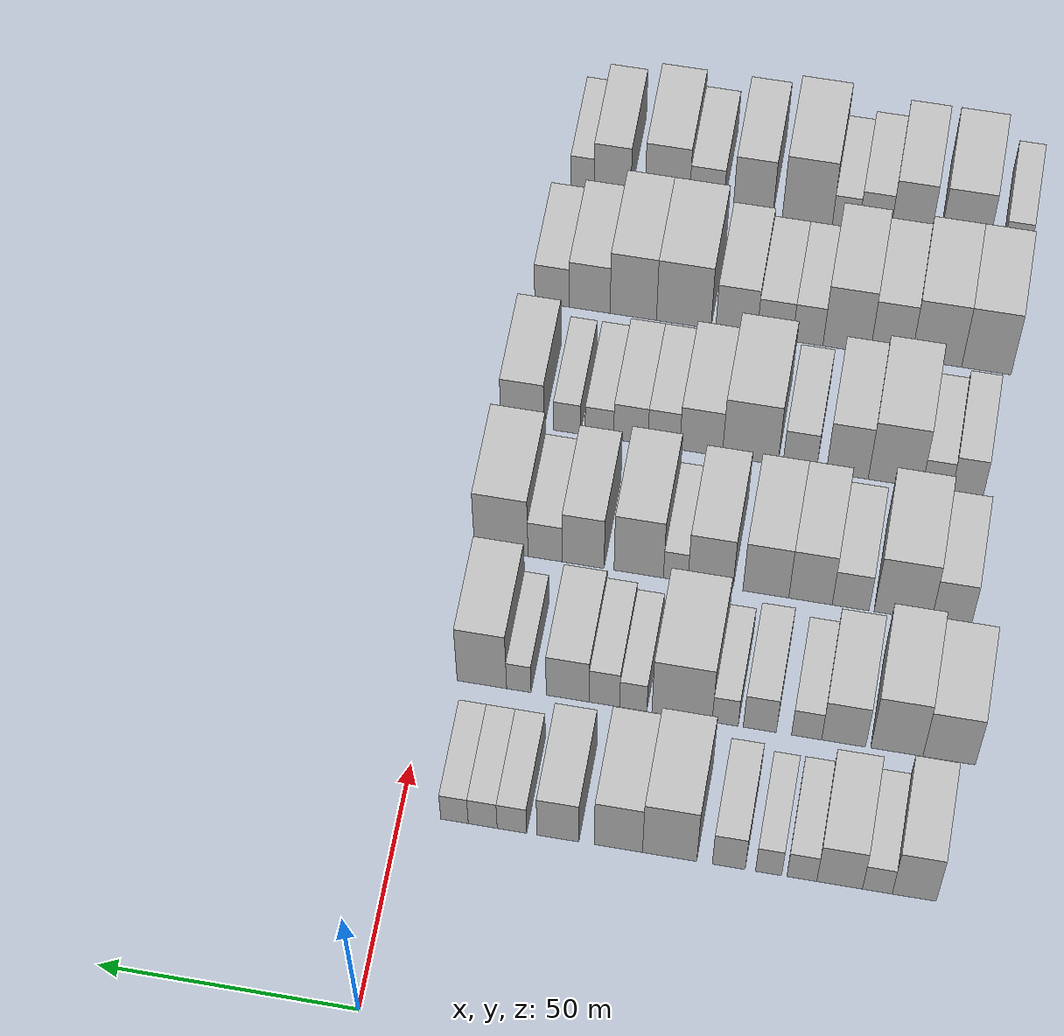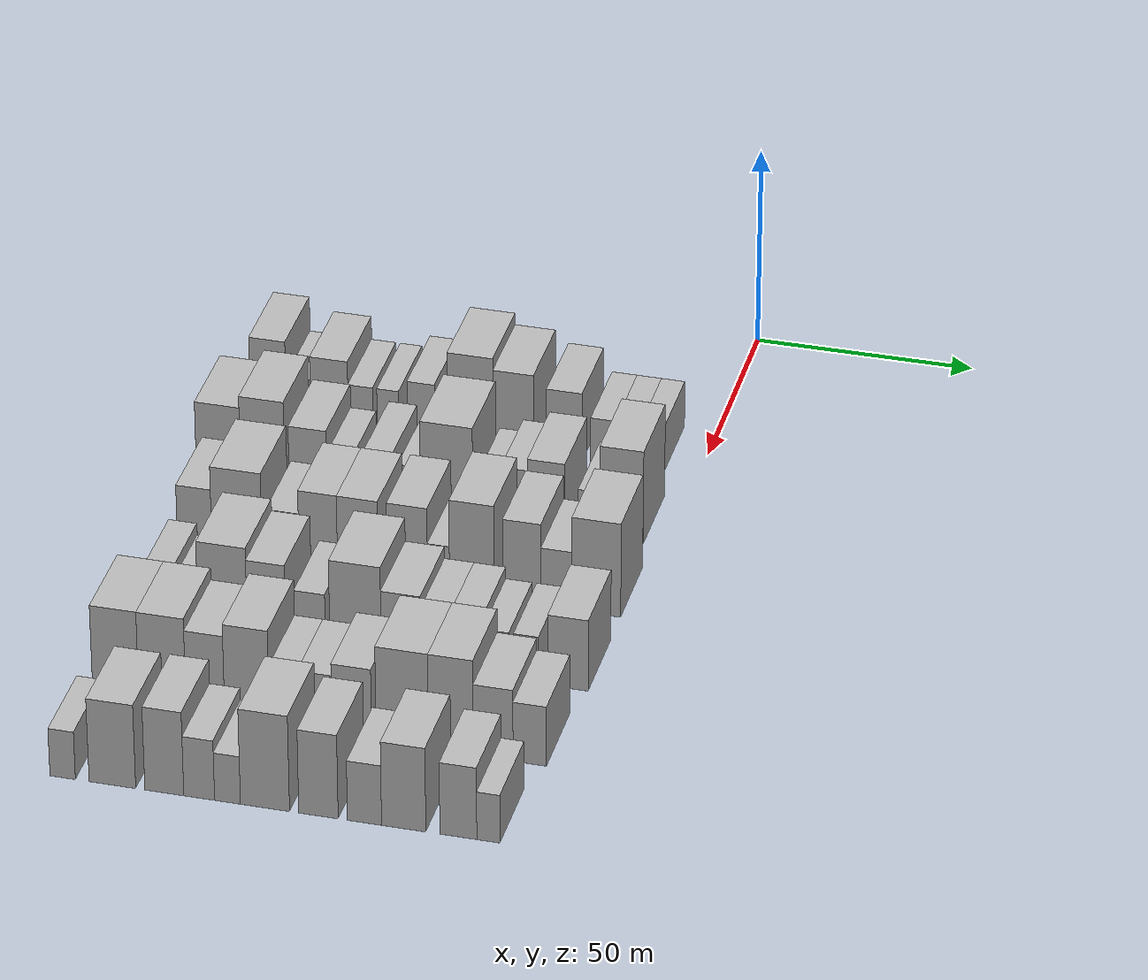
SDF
<sdf version="1.6">
 <world name="default">
  <model name="building_45">
   <static>1</static>
   <pose>50.0000 -99.3476 0 0.000000 0.000000 0.000000</pose>
   <link name="link">
    <pose>0 0 10.50 0 0 0</pose>
    <collision name="collision"><geometry><box><size>20.0000 8.4114 21.0000</size></box></geometry></collision>
    <visual name="visual">
     <cast_shadows>0</cast_shadows>
     <geometry><box><size>20.0000 8.4114 21.0000</size></box></geometry>
     <material>
      <script>
       <uri>model://HANNAS_wall/materials/scripts</uri>
       <uri>model://HANNAS_wall/materials/textures</uri>
       <name>vrc/HANNAS_wall</name>
      </script>
     </material>
    </visual>
   </link>
  </model>
  <model name="building_46">
   <static>1</static>
   <pose>50.0000 -92.2943 0 0.000000 0.000000 0.000000</pose>
   <link name="link">
    <pose>0 0 6.00 0 0 0</pose>
    <collision name="collision"><geometry><box><size>20.0000 5.6951 12.0000</size></box></geometry></collision>
    <visual name="visual">
     <cast_shadows>0</cast_shadows>
     <geometry><box><size>20.0000 5.6951 12.0000</size></box></geometry>
     <material>
      <script>
       <uri>model://HANNAS_wall/materials/scripts</uri>
       <uri>model://HANNAS_wall/materials/textures</uri>
       <name>vrc/HANNAS_wall</name>
      </script>
     </material>
    </visual>
   </link>
  </model>
  <model name="building_47">
   <static>1</static>
   <pose>50.0000 -85.0545 0 0.000000 0.000000 0.000000</pose>
   <link name="link">
    <pose>0 0 9.00 0 0 0</pose>
    <collision name="collision"><geometry><box><size>20.0000 8.7846 18.0000</size></box></geometry></collision>
    <visual name="visual">
     <cast_shadows>0</cast_shadows>
     <geometry><box><size>20.0000 8.7846 18.0000</size></box></geometry>
     <material>
      <script>
       <uri>model://HANNAS_wall/materials/scripts</uri>
       <uri>model://HANNAS_wall/materials/textures</uri>
       <name>vrc/HANNAS_wall</name>
      </script>
     </material>
    </visual>
   </link>
  </model>
  <model name="building_48">
   <static>1</static>
   <pose>50.0000 -77.7949 0 0.000000 0.000000 0.000000</pose>
   <link name="link">
    <pose>0 0 6.00 0 0 0</pose>
    <collision name="collision"><geometry><box><size>20.0000 5.7346 12.0000</size></box></geometry></collision>
    <visual name="visual">
     <cast_shadows>0</cast_shadows>
     <geometry><box><size>20.0000 5.7346 12.0000</size></box></geometry>
     <material>
      <script>
       <uri>model://HANNAS_wall/materials/scripts</uri>
       <uri>model://HANNAS_wall/materials/textures</uri>
       <name>vrc/HANNAS_wall</name>
      </script>
     </material>
    </visual>
   </link>
  </model>
  <model name="building_49">
   <static>1</static>
   <pose>50.0000 -71.4080 0 0.000000 0.000000 0.000000</pose>
   <link name="link">
    <pose>0 0 6.00 0 0 0</pose>
    <collision name="collision"><geometry><box><size>20.0000 5.0391 12.0000</size></box></geometry></collision>
    <visual name="visual">
     <cast_shadows>0</cast_shadows>
     <geometry><box><size>20.0000 5.0391 12.0000</size></box></geometry>
     <material>
      <script>
       <uri>model://HANNAS_wall/materials/scripts</uri>
       <uri>model://HANNAS_wall/materials/textures</uri>
       <name>vrc/HANNAS_wall</name>
      </script>
     </material>
    </visual>
   </link>
  </model>
  <model name="building_50">
   <static>1</static>
   <pose>50.0000 -63.7196 0 0.000000 0.000000 0.000000</pose>
   <link name="link">
    <pose>0 0 7.50 0 0 0</pose>
    <collision name="collision"><geometry><box><size>20.0000 6.3378 15.0000</size></box></geometry></collision>
    <visual name="visual">
     <cast_shadows>0</cast_shadows>
     <geometry><box><size>20.0000 6.3378 15.0000</size></box></geometry>
     <material>
      <script>
       <uri>model://HANNAS_wall/materials/scripts</uri>
       <uri>model://HANNAS_wall/materials/textures</uri>
       <name>vrc/HANNAS_wall</name>
      </script>
     </material>
    </visual>
   </link>
  </model>
  <model name="building_51">
   <static>1</static>
   <pose>50.0000 -52.3012 0 0.000000 0.000000 0.000000</pose>
   <link name="link">
    <pose>0 0 12.00 0 0 0</pose>
    <collision name="collision"><geometry><box><size>20.0000 10.4989 24.0000</size></box></geometry></collision>
    <visual name="visual">
     <cast_shadows>0</cast_shadows>
     <geometry><box><size>20.0000 10.4989 24.0000</size></box></geometry>
     <material>
      <script>
       <uri>model://HANNAS_wall/materials/scripts</uri>
       <uri>model://HANNAS_wall/materials/textures</uri>
       <name>vrc/HANNAS_wall</name>
      </script>
     </material>
    </visual>
   </link>
  </model>
  <model name="building_52">
   <static>1</static>
   <pose>50.0000 -42.3873 0 0.000000 0.000000 0.000000</pose>
   <link name="link">
    <pose>0 0 10.50 0 0 0</pose>
    <collision name="collision"><geometry><box><size>20.0000 9.3289 21.0000</size></box></geometry></collision>
    <visual name="visual">
     <cast_shadows>0</cast_shadows>
     <geometry><box><size>20.0000 9.3289 21.0000</size></box></geometry>
     <material>
      <script>
       <uri>model://HANNAS_wall/materials/scripts</uri>
       <uri>model://HANNAS_wall/materials/textures</uri>
       <name>vrc/HANNAS_wall</name>
      </script>
     </material>
    </visual>
   </link>
  </model>
  <model name="building_53">
   <static>1</static>
   <pose>50.0000 -30.6553 0 0.000000 0.000000 0.000000</pose>
   <link name="link">
    <pose>0 0 9.00 0 0 0</pose>
    <collision name="collision"><geometry><box><size>20.0000 8.1350 18.0000</size></box></geometry></collision>
    <visual name="visual">
     <cast_shadows>0</cast_shadows>
     <geometry><box><size>20.0000 8.1350 18.0000</size></box></geometry>
     <material>
      <script>
       <uri>model://HANNAS_wall/materials/scripts</uri>
       <uri>model://HANNAS_wall/materials/textures</uri>
       <name>vrc/HANNAS_wall</name>
      </script>
     </material>
    </visual>
   </link>
  </model>
  <model name="building_54">
   <static>1</static>
   <pose>50.0000 -21.7076 0 0.000000 0.000000 0.000000</pose>
   <link name="link">
    <pose>0 0 6.00 0 0 0</pose>
    <collision name="collision"><geometry><box><size>20.0000 5.7605 12.0000</size></box></geometry></collision>
    <visual name="visual">
     <cast_shadows>0</cast_shadows>
     <geometry><box><size>20.0000 5.7605 12.0000</size></box></geometry>
     <material>
      <script>
       <uri>model://HANNAS_wall/materials/scripts</uri>
       <uri>model://HANNAS_wall/materials/textures</uri>
       <name>vrc/HANNAS_wall</name>
      </script>
     </material>
    </visual>
   </link>
  </model>
  <model name="building_55">
   <static>1</static>
   <pose>50.0000 -16.0079 0 0.000000 0.000000 0.000000</pose>
   <link name="link">
    <pose>0 0 6.00 0 0 0</pose>
    <collision name="collision"><geometry><box><size>20.0000 5.6389 12.0000</size></box></geometry></collision>
    <visual name="visual">
     <cast_shadows>0</cast_shadows>
     <geometry><box><size>20.0000 5.6389 12.0000</size></box></geometry>
     <material>
      <script>
       <uri>model://HANNAS_wall/materials/scripts</uri>
       <uri>model://HANNAS_wall/materials/textures</uri>
       <name>vrc/HANNAS_wall</name>
      </script>
     </material>
    </visual>
   </link>
  </model>
  <model name="building_56">
   <static>1</static>
   <pose>50.0000 -10.5080 0 0.000000 0.000000 0.000000</pose>
   <link name="link">
    <pose>0 0 6.00 0 0 0</pose>
    <collision name="collision"><geometry><box><size>20.0000 5.3609 12.0000</size></box></geometry></collision>
    <visual name="visual">
     <cast_shadows>0</cast_shadows>
     <geometry><box><size>20.0000 5.3609 12.0000</size></box></geometry>
     <material>
      <script>
       <uri>model://HANNAS_wall/materials/scripts</uri>
       <uri>model://HANNAS_wall/materials/textures</uri>
       <name>vrc/HANNAS_wall</name>
      </script>
     </material>
    </visual>
   </link>
  </model>
  <model name="building_160">
   <static>1</static>
   <pose>79.0000 -102.3951 0 0.000000 0.000000 0.000000</pose>
   <link name="link">
    <pose>0 0 10.50 0 0 0</pose>
    <collision name="collision"><geometry><box><size>20.0000 10.2375 21.0000</size></box></geometry></collision>
    <visual name="visual">
     <cast_shadows>0</cast_shadows>
     <geometry><box><size>20.0000 10.2375 21.0000</size></box></geometry>
     <material>
      <script>
       <uri>model://HANNAS_wall/materials/scripts</uri>
       <uri>model://HANNAS_wall/materials/textures</uri>
       <name>vrc/HANNAS_wall</name>
      </script>
     </material>
    </visual>
   </link>
  </model>
  <model name="building_161">
   <static>1</static>
   <pose>79.0000 -92.1810 0 0.000000 0.000000 0.000000</pose>
   <link name="link">
    <pose>0 0 12.00 0 0 0</pose>
    <collision name="collision"><geometry><box><size>20.0000 10.1906 24.0000</size></box></geometry></collision>
    <visual name="visual">
     <cast_shadows>0</cast_shadows>
     <geometry><box><size>20.0000 10.1906 24.0000</size></box></geometry>
     <material>
      <script>
       <uri>model://HANNAS_wall/materials/scripts</uri>
       <uri>model://HANNAS_wall/materials/textures</uri>
       <name>vrc/HANNAS_wall</name>
      </script>
     </material>
    </visual>
   </link>
  </model>
  <model name="building_162">
   <static>1</static>
   <pose>79.0000 -81.7719 0 0.000000 0.000000 0.000000</pose>
   <link name="link">
    <pose>0 0 9.00 0 0 0</pose>
    <collision name="collision"><geometry><box><size>20.0000 8.6277 18.0000</size></box></geometry></collision>
    <visual name="visual">
     <cast_shadows>0</cast_shadows>
     <geometry><box><size>20.0000 8.6277 18.0000</size></box></geometry>
     <material>
      <script>
       <uri>model://HANNAS_wall/materials/scripts</uri>
       <uri>model://HANNAS_wall/materials/textures</uri>
       <name>vrc/HANNAS_wall</name>
      </script>
     </material>
    </visual>
   </link>
  </model>
  <model name="building_163">
   <static>1</static>
   <pose>79.0000 -74.5168 0 0.000000 0.000000 0.000000</pose>
   <link name="link">
    <pose>0 0 6.00 0 0 0</pose>
    <collision name="collision"><geometry><box><size>20.0000 5.8824 12.0000</size></box></geometry></collision>
    <visual name="visual">
     <cast_shadows>0</cast_shadows>
     <geometry><box><size>20.0000 5.8824 12.0000</size></box></geometry>
     <material>
      <script>
       <uri>model://HANNAS_wall/materials/scripts</uri>
       <uri>model://HANNAS_wall/materials/textures</uri>
       <name>vrc/HANNAS_wall</name>
      </script>
     </material>
    </visual>
   </link>
  </model>
  <model name="building_164">
   <static>1</static>
   <pose>79.0000 -65.3250 0 0.000000 0.000000 0.000000</pose>
   <link name="link">
    <pose>0 0 7.50 0 0 0</pose>
    <collision name="collision"><geometry><box><size>20.0000 6.5013 15.0000</size></box></geometry></collision>
    <visual name="visual">
     <cast_shadows>0</cast_shadows>
     <geometry><box><size>20.0000 6.5013 15.0000</size></box></geometry>
     <material>
      <script>
       <uri>model://HANNAS_wall/materials/scripts</uri>
       <uri>model://HANNAS_wall/materials/textures</uri>
       <name>vrc/HANNAS_wall</name>
      </script>
     </material>
    </visual>
   </link>
  </model>
  <model name="building_165">
   <static>1</static>
   <pose>79.0000 -58.5099 0 0.000000 0.000000 0.000000</pose>
   <link name="link">
    <pose>0 0 6.00 0 0 0</pose>
    <collision name="collision"><geometry><box><size>20.0000 5.1288 12.0000</size></box></geometry></collision>
    <visual name="visual">
     <cast_shadows>0</cast_shadows>
     <geometry><box><size>20.0000 5.1288 12.0000</size></box></geometry>
     <material>
      <script>
       <uri>model://HANNAS_wall/materials/scripts</uri>
       <uri>model://HANNAS_wall/materials/textures</uri>
       <name>vrc/HANNAS_wall</name>
      </script>
     </material>
    </visual>
   </link>
  </model>
  <model name="building_166">
   <static>1</static>
   <pose>79.0000 -50.0015 0 0.000000 0.000000 0.000000</pose>
   <link name="link">
    <pose>0 0 12.00 0 0 0</pose>
    <collision name="collision"><geometry><box><size>20.0000 11.8882 24.0000</size></box></geometry></collision>
    <visual name="visual">
     <cast_shadows>0</cast_shadows>
     <geometry><box><size>20.0000 11.8882 24.0000</size></box></geometry>
     <material>
      <script>
       <uri>model://HANNAS_wall/materials/scripts</uri>
       <uri>model://HANNAS_wall/materials/textures</uri>
       <name>vrc/HANNAS_wall</name>
      </script>
     </material>
    </visual>
   </link>
  </model>
  <model name="building_167">
   <static>1</static>
   <pose>79.0000 -40.3662 0 0.000000 0.000000 0.000000</pose>
   <link name="link">
    <pose>0 0 6.00 0 0 0</pose>
    <collision name="collision"><geometry><box><size>20.0000 5.3823 12.0000</size></box></geometry></collision>
    <visual name="visual">
     <cast_shadows>0</cast_shadows>
     <geometry><box><size>20.0000 5.3823 12.0000</size></box></geometry>
     <material>
      <script>
       <uri>model://HANNAS_wall/materials/scripts</uri>
       <uri>model://HANNAS_wall/materials/textures</uri>
       <name>vrc/HANNAS_wall</name>
      </script>
     </material>
    </visual>
   </link>
  </model>
  <model name="building_168">
   <static>1</static>
   <pose>79.0000 -34.6592 0 0.000000 0.000000 0.000000</pose>
   <link name="link">
    <pose>0 0 7.50 0 0 0</pose>
    <collision name="collision"><geometry><box><size>20.0000 6.0317 15.0000</size></box></geometry></collision>
    <visual name="visual">
     <cast_shadows>0</cast_shadows>
     <geometry><box><size>20.0000 6.0317 15.0000</size></box></geometry>
     <material>
      <script>
       <uri>model://HANNAS_wall/materials/scripts</uri>
       <uri>model://HANNAS_wall/materials/textures</uri>
       <name>vrc/HANNAS_wall</name>
      </script>
     </material>
    </visual>
   </link>
  </model>
  <model name="building_169">
   <static>1</static>
   <pose>79.0000 -27.3912 0 0.000000 0.000000 0.000000</pose>
   <link name="link">
    <pose>0 0 9.00 0 0 0</pose>
    <collision name="collision"><geometry><box><size>20.0000 8.5044 18.0000</size></box></geometry></collision>
    <visual name="visual">
     <cast_shadows>0</cast_shadows>
     <geometry><box><size>20.0000 8.5044 18.0000</size></box></geometry>
     <material>
      <script>
       <uri>model://HANNAS_wall/materials/scripts</uri>
       <uri>model://HANNAS_wall/materials/textures</uri>
       <name>vrc/HANNAS_wall</name>
      </script>
     </material>
    </visual>
   </link>
  </model>
  <model name="building_170">
   <static>1</static>
   <pose>79.0000 -17.7043 0 0.000000 0.000000 0.000000</pose>
   <link name="link">
    <pose>0 0 6.00 0 0 0</pose>
    <collision name="collision"><geometry><box><size>20.0000 4.8693 12.0000</size></box></geometry></collision>
    <visual name="visual">
     <cast_shadows>0</cast_shadows>
     <geometry><box><size>20.0000 4.8693 12.0000</size></box></geometry>
     <material>
      <script>
       <uri>model://HANNAS_wall/materials/scripts</uri>
       <uri>model://HANNAS_wall/materials/textures</uri>
       <name>vrc/HANNAS_wall</name>
      </script>
     </material>
    </visual>
   </link>
  </model>
  <model name="building_171">
   <static>1</static>
   <pose>79.0000 -10.3480 0 0.000000 0.000000 0.000000</pose>
   <link name="link">
    <pose>0 0 12.00 0 0 0</pose>
    <collision name="collision"><geometry><box><size>20.0000 9.8434 24.0000</size></box></geometry></collision>
    <visual name="visual">
     <cast_shadows>0</cast_shadows>
     <geometry><box><size>20.0000 9.8434 24.0000</size></box></geometry>
     <material>
      <script>
       <uri>model://HANNAS_wall/materials/scripts</uri>
       <uri>model://HANNAS_wall/materials/textures</uri>
       <name>vrc/HANNAS_wall</name>
      </script>
     </material>
    </visual>
   </link>
  </model>
  <model name="building_276">
   <static>1</static>
   <pose>108.0000 -99.1870 0 0.000000 0.000000 0.000000</pose>
   <link name="link">
    <pose>0 0 9.00 0 0 0</pose>
    <collision name="collision"><geometry><box><size>20.0000 7.8413 18.0000</size></box></geometry></collision>
    <visual name="visual">
     <cast_shadows>0</cast_shadows>
     <geometry><box><size>20.0000 7.8413 18.0000</size></box></geometry>
     <material>
      <script>
       <uri>model://HANNAS_wall/materials/scripts</uri>
       <uri>model://HANNAS_wall/materials/textures</uri>
       <name>vrc/HANNAS_wall</name>
      </script>
     </material>
    </visual>
   </link>
  </model>
  <model name="building_277">
   <static>1</static>
   <pose>108.0000 -89.5492 0 0.000000 0.000000 0.000000</pose>
   <link name="link">
    <pose>0 0 12.00 0 0 0</pose>
    <collision name="collision"><geometry><box><size>20.0000 11.4343 24.0000</size></box></geometry></collision>
    <visual name="visual">
     <cast_shadows>0</cast_shadows>
     <geometry><box><size>20.0000 11.4343 24.0000</size></box></geometry>
     <material>
      <script>
       <uri>model://HANNAS_wall/materials/scripts</uri>
       <uri>model://HANNAS_wall/materials/textures</uri>
       <name>vrc/HANNAS_wall</name>
      </script>
     </material>
    </visual>
   </link>
  </model>
  <model name="building_278">
   <static>1</static>
   <pose>108.0000 -79.1526 0 0.000000 0.000000 0.000000</pose>
   <link name="link">
    <pose>0 0 7.50 0 0 0</pose>
    <collision name="collision"><geometry><box><size>20.0000 7.3588 15.0000</size></box></geometry></collision>
    <visual name="visual">
     <cast_shadows>0</cast_shadows>
     <geometry><box><size>20.0000 7.3588 15.0000</size></box></geometry>
     <material>
      <script>
       <uri>model://HANNAS_wall/materials/scripts</uri>
       <uri>model://HANNAS_wall/materials/textures</uri>
       <name>vrc/HANNAS_wall</name>
      </script>
     </material>
    </visual>
   </link>
  </model>
  <model name="building_279">
   <static>1</static>
   <pose>108.0000 -71.1262 0 0.000000 0.000000 0.000000</pose>
   <link name="link">
    <pose>0 0 10.50 0 0 0</pose>
    <collision name="collision"><geometry><box><size>20.0000 8.6941 21.0000</size></box></geometry></collision>
    <visual name="visual">
     <cast_shadows>0</cast_shadows>
     <geometry><box><size>20.0000 8.6941 21.0000</size></box></geometry>
     <material>
      <script>
       <uri>model://HANNAS_wall/materials/scripts</uri>
       <uri>model://HANNAS_wall/materials/textures</uri>
       <name>vrc/HANNAS_wall</name>
      </script>
     </material>
    </visual>
   </link>
  </model>
  <model name="building_280">
   <static>1</static>
   <pose>108.0000 -62.1736 0 0.000000 0.000000 0.000000</pose>
   <link name="link">
    <pose>0 0 10.50 0 0 0</pose>
    <collision name="collision"><geometry><box><size>20.0000 9.2110 21.0000</size></box></geometry></collision>
    <visual name="visual">
     <cast_shadows>0</cast_shadows>
     <geometry><box><size>20.0000 9.2110 21.0000</size></box></geometry>
     <material>
      <script>
       <uri>model://HANNAS_wall/materials/scripts</uri>
       <uri>model://HANNAS_wall/materials/textures</uri>
       <name>vrc/HANNAS_wall</name>
      </script>
     </material>
    </visual>
   </link>
  </model>
  <model name="building_281">
   <static>1</static>
   <pose>108.0000 -51.0351 0 0.000000 0.000000 0.000000</pose>
   <link name="link">
    <pose>0 0 10.50 0 0 0</pose>
    <collision name="collision"><geometry><box><size>20.0000 9.0660 21.0000</size></box></geometry></collision>
    <visual name="visual">
     <cast_shadows>0</cast_shadows>
     <geometry><box><size>20.0000 9.0660 21.0000</size></box></geometry>
     <material>
      <script>
       <uri>model://HANNAS_wall/materials/scripts</uri>
       <uri>model://HANNAS_wall/materials/textures</uri>
       <name>vrc/HANNAS_wall</name>
      </script>
     </material>
    </visual>
   </link>
  </model>
  <model name="building_282">
   <static>1</static>
   <pose>108.0000 -44.0360 0 0.000000 0.000000 0.000000</pose>
   <link name="link">
    <pose>0 0 6.00 0 0 0</pose>
    <collision name="collision"><geometry><box><size>20.0000 4.9323 12.0000</size></box></geometry></collision>
    <visual name="visual">
     <cast_shadows>0</cast_shadows>
     <geometry><box><size>20.0000 4.9323 12.0000</size></box></geometry>
     <material>
      <script>
       <uri>model://HANNAS_wall/materials/scripts</uri>
       <uri>model://HANNAS_wall/materials/textures</uri>
       <name>vrc/HANNAS_wall</name>
      </script>
     </material>
    </visual>
   </link>
  </model>
  <model name="building_283">
   <static>1</static>
   <pose>108.0000 -36.5910 0 0.000000 0.000000 0.000000</pose>
   <link name="link">
    <pose>0 0 12.00 0 0 0</pose>
    <collision name="collision"><geometry><box><size>20.0000 9.9577 24.0000</size></box></geometry></collision>
    <visual name="visual">
     <cast_shadows>0</cast_shadows>
     <geometry><box><size>20.0000 9.9577 24.0000</size></box></geometry>
     <material>
      <script>
       <uri>model://HANNAS_wall/materials/scripts</uri>
       <uri>model://HANNAS_wall/materials/textures</uri>
       <name>vrc/HANNAS_wall</name>
      </script>
     </material>
    </visual>
   </link>
  </model>
  <model name="building_284">
   <static>1</static>
   <pose>108.0000 -25.3706 0 0.000000 0.000000 0.000000</pose>
   <link name="link">
    <pose>0 0 10.50 0 0 0</pose>
    <collision name="collision"><geometry><box><size>20.0000 8.4831 21.0000</size></box></geometry></collision>
    <visual name="visual">
     <cast_shadows>0</cast_shadows>
     <geometry><box><size>20.0000 8.4831 21.0000</size></box></geometry>
     <material>
      <script>
       <uri>model://HANNAS_wall/materials/scripts</uri>
       <uri>model://HANNAS_wall/materials/textures</uri>
       <name>vrc/HANNAS_wall</name>
      </script>
     </material>
    </visual>
   </link>
  </model>
  <model name="building_285">
   <static>1</static>
   <pose>108.0000 -17.6736 0 0.000000 0.000000 0.000000</pose>
   <link name="link">
    <pose>0 0 7.50 0 0 0</pose>
    <collision name="collision"><geometry><box><size>20.0000 6.9109 15.0000</size></box></geometry></collision>
    <visual name="visual">
     <cast_shadows>0</cast_shadows>
     <geometry><box><size>20.0000 6.9109 15.0000</size></box></geometry>
     <material>
      <script>
       <uri>model://HANNAS_wall/materials/scripts</uri>
       <uri>model://HANNAS_wall/materials/textures</uri>
       <name>vrc/HANNAS_wall</name>
      </script>
     </material>
    </visual>
   </link>
  </model>
  <model name="building_286">
   <static>1</static>
   <pose>108.0000 -8.7794 0 0.000000 0.000000 0.000000</pose>
   <link name="link">
    <pose>0 0 12.00 0 0 0</pose>
    <collision name="collision"><geometry><box><size>20.0000 10.8776 24.0000</size></box></geometry></collision>
    <visual name="visual">
     <cast_shadows>0</cast_shadows>
     <geometry><box><size>20.0000 10.8776 24.0000</size></box></geometry>
     <material>
      <script>
       <uri>model://HANNAS_wall/materials/scripts</uri>
       <uri>model://HANNAS_wall/materials/textures</uri>
       <name>vrc/HANNAS_wall</name>
      </script>
     </material>
    </visual>
   </link>
  </model>
  <model name="building_388">
   <static>1</static>
   <pose>137.0000 -98.8350 0 0.000000 0.000000 0.000000</pose>
   <link name="link">
    <pose>0 0 7.50 0 0 0</pose>
    <collision name="collision"><geometry><box><size>20.0000 6.3532 15.0000</size></box></geometry></collision>
    <visual name="visual">
     <cast_shadows>0</cast_shadows>
     <geometry><box><size>20.0000 6.3532 15.0000</size></box></geometry>
     <material>
      <script>
       <uri>model://HANNAS_wall/materials/scripts</uri>
       <uri>model://HANNAS_wall/materials/textures</uri>
       <name>vrc/HANNAS_wall</name>
      </script>
     </material>
    </visual>
   </link>
  </model>
  <model name="building_389">
   <static>1</static>
   <pose>137.0000 -92.6769 0 0.000000 0.000000 0.000000</pose>
   <link name="link">
    <pose>0 0 6.00 0 0 0</pose>
    <collision name="collision"><geometry><box><size>20.0000 5.9630 12.0000</size></box></geometry></collision>
    <visual name="visual">
     <cast_shadows>0</cast_shadows>
     <geometry><box><size>20.0000 5.9630 12.0000</size></box></geometry>
     <material>
      <script>
       <uri>model://HANNAS_wall/materials/scripts</uri>
       <uri>model://HANNAS_wall/materials/textures</uri>
       <name>vrc/HANNAS_wall</name>
      </script>
     </material>
    </visual>
   </link>
  </model>
  <model name="building_390">
   <static>1</static>
   <pose>137.0000 -84.2020 0 0.000000 0.000000 0.000000</pose>
   <link name="link">
    <pose>0 0 12.00 0 0 0</pose>
    <collision name="collision"><geometry><box><size>20.0000 10.9869 24.0000</size></box></geometry></collision>
    <visual name="visual">
     <cast_shadows>0</cast_shadows>
     <geometry><box><size>20.0000 10.9869 24.0000</size></box></geometry>
     <material>
      <script>
       <uri>model://HANNAS_wall/materials/scripts</uri>
       <uri>model://HANNAS_wall/materials/textures</uri>
       <name>vrc/HANNAS_wall</name>
      </script>
     </material>
    </visual>
   </link>
  </model>
  <model name="building_391">
   <static>1</static>
   <pose>137.0000 -74.4316 0 0.000000 0.000000 0.000000</pose>
   <link name="link">
    <pose>0 0 10.50 0 0 0</pose>
    <collision name="collision"><geometry><box><size>20.0000 8.5539 21.0000</size></box></geometry></collision>
    <visual name="visual">
     <cast_shadows>0</cast_shadows>
     <geometry><box><size>20.0000 8.5539 21.0000</size></box></geometry>
     <material>
      <script>
       <uri>model://HANNAS_wall/materials/scripts</uri>
       <uri>model://HANNAS_wall/materials/textures</uri>
       <name>vrc/HANNAS_wall</name>
      </script>
     </material>
    </visual>
   </link>
  </model>
  <model name="building_392">
   <static>1</static>
   <pose>137.0000 -64.7208 0 0.000000 0.000000 0.000000</pose>
   <link name="link">
    <pose>0 0 7.50 0 0 0</pose>
    <collision name="collision"><geometry><box><size>20.0000 6.8677 15.0000</size></box></geometry></collision>
    <visual name="visual">
     <cast_shadows>0</cast_shadows>
     <geometry><box><size>20.0000 6.8677 15.0000</size></box></geometry>
     <material>
      <script>
       <uri>model://HANNAS_wall/materials/scripts</uri>
       <uri>model://HANNAS_wall/materials/textures</uri>
       <name>vrc/HANNAS_wall</name>
      </script>
     </material>
    </visual>
   </link>
  </model>
  <model name="building_393">
   <static>1</static>
   <pose>137.0000 -54.5945 0 0.000000 0.000000 0.000000</pose>
   <link name="link">
    <pose>0 0 12.00 0 0 0</pose>
    <collision name="collision"><geometry><box><size>20.0000 11.3848 24.0000</size></box></geometry></collision>
    <visual name="visual">
     <cast_shadows>0</cast_shadows>
     <geometry><box><size>20.0000 11.3848 24.0000</size></box></geometry>
     <material>
      <script>
       <uri>model://HANNAS_wall/materials/scripts</uri>
       <uri>model://HANNAS_wall/materials/textures</uri>
       <name>vrc/HANNAS_wall</name>
      </script>
     </material>
    </visual>
   </link>
  </model>
  <model name="building_394">
   <static>1</static>
   <pose>137.0000 -44.5297 0 0.000000 0.000000 0.000000</pose>
   <link name="link">
    <pose>0 0 9.00 0 0 0</pose>
    <collision name="collision"><geometry><box><size>20.0000 8.7447 18.0000</size></box></geometry></collision>
    <visual name="visual">
     <cast_shadows>0</cast_shadows>
     <geometry><box><size>20.0000 8.7447 18.0000</size></box></geometry>
     <material>
      <script>
       <uri>model://HANNAS_wall/materials/scripts</uri>
       <uri>model://HANNAS_wall/materials/textures</uri>
       <name>vrc/HANNAS_wall</name>
      </script>
     </material>
    </visual>
   </link>
  </model>
  <model name="building_395">
   <static>1</static>
   <pose>137.0000 -36.8859 0 0.000000 0.000000 0.000000</pose>
   <link name="link">
    <pose>0 0 7.50 0 0 0</pose>
    <collision name="collision"><geometry><box><size>20.0000 6.5428 15.0000</size></box></geometry></collision>
    <visual name="visual">
     <cast_shadows>0</cast_shadows>
     <geometry><box><size>20.0000 6.5428 15.0000</size></box></geometry>
     <material>
      <script>
       <uri>model://HANNAS_wall/materials/scripts</uri>
       <uri>model://HANNAS_wall/materials/textures</uri>
       <name>vrc/HANNAS_wall</name>
      </script>
     </material>
    </visual>
   </link>
  </model>
  <model name="building_396">
   <static>1</static>
   <pose>137.0000 -30.0908 0 0.000000 0.000000 0.000000</pose>
   <link name="link">
    <pose>0 0 7.50 0 0 0</pose>
    <collision name="collision"><geometry><box><size>20.0000 7.0474 15.0000</size></box></geometry></collision>
    <visual name="visual">
     <cast_shadows>0</cast_shadows>
     <geometry><box><size>20.0000 7.0474 15.0000</size></box></geometry>
     <material>
      <script>
       <uri>model://HANNAS_wall/materials/scripts</uri>
       <uri>model://HANNAS_wall/materials/textures</uri>
       <name>vrc/HANNAS_wall</name>
      </script>
     </material>
    </visual>
   </link>
  </model>
  <model name="building_397">
   <static>1</static>
   <pose>137.0000 -23.6365 0 0.000000 0.000000 0.000000</pose>
   <link name="link">
    <pose>0 0 6.00 0 0 0</pose>
    <collision name="collision"><geometry><box><size>20.0000 5.8612 12.0000</size></box></geometry></collision>
    <visual name="visual">
     <cast_shadows>0</cast_shadows>
     <geometry><box><size>20.0000 5.8612 12.0000</size></box></geometry>
     <material>
      <script>
       <uri>model://HANNAS_wall/materials/scripts</uri>
       <uri>model://HANNAS_wall/materials/textures</uri>
       <name>vrc/HANNAS_wall</name>
      </script>
     </material>
    </visual>
   </link>
  </model>
  <model name="building_398">
   <static>1</static>
   <pose>137.0000 -16.9517 0 0.000000 0.000000 0.000000</pose>
   <link name="link">
    <pose>0 0 6.00 0 0 0</pose>
    <collision name="collision"><geometry><box><size>20.0000 5.5085 12.0000</size></box></geometry></collision>
    <visual name="visual">
     <cast_shadows>0</cast_shadows>
     <geometry><box><size>20.0000 5.5085 12.0000</size></box></geometry>
     <material>
      <script>
       <uri>model://HANNAS_wall/materials/scripts</uri>
       <uri>model://HANNAS_wall/materials/textures</uri>
       <name>vrc/HANNAS_wall</name>
      </script>
     </material>
    </visual>
   </link>
  </model>
  <model name="building_399">
   <static>1</static>
   <pose>137.0000 -7.7468 0 0.000000 0.000000 0.000000</pose>
   <link name="link">
    <pose>0 0 9.00 0 0 0</pose>
    <collision name="collision"><geometry><box><size>20.0000 8.9011 18.0000</size></box></geometry></collision>
    <visual name="visual">
     <cast_shadows>0</cast_shadows>
     <geometry><box><size>20.0000 8.9011 18.0000</size></box></geometry>
     <material>
      <script>
       <uri>model://HANNAS_wall/materials/scripts</uri>
       <uri>model://HANNAS_wall/materials/textures</uri>
       <name>vrc/HANNAS_wall</name>
      </script>
     </material>
    </visual>
   </link>
  </model>
  <model name="building_505">
   <static>1</static>
   <pose>166.0000 -99.2346 0 0.000000 0.000000 0.000000</pose>
   <link name="link">
    <pose>0 0 12.00 0 0 0</pose>
    <collision name="collision"><geometry><box><size>20.0000 10.2313 24.0000</size></box></geometry></collision>
    <visual name="visual">
     <cast_shadows>0</cast_shadows>
     <geometry><box><size>20.0000 10.2313 24.0000</size></box></geometry>
     <material>
      <script>
       <uri>model://HANNAS_wall/materials/scripts</uri>
       <uri>model://HANNAS_wall/materials/textures</uri>
       <name>vrc/HANNAS_wall</name>
      </script>
     </material>
    </visual>
   </link>
  </model>
  <model name="building_506">
   <static>1</static>
   <pose>166.0000 -88.9138 0 0.000000 0.000000 0.000000</pose>
   <link name="link">
    <pose>0 0 12.00 0 0 0</pose>
    <collision name="collision"><geometry><box><size>20.0000 10.4103 24.0000</size></box></geometry></collision>
    <visual name="visual">
     <cast_shadows>0</cast_shadows>
     <geometry><box><size>20.0000 10.4103 24.0000</size></box></geometry>
     <material>
      <script>
       <uri>model://HANNAS_wall/materials/scripts</uri>
       <uri>model://HANNAS_wall/materials/textures</uri>
       <name>vrc/HANNAS_wall</name>
      </script>
     </material>
    </visual>
   </link>
  </model>
  <model name="building_507">
   <static>1</static>
   <pose>166.0000 -79.4524 0 0.000000 0.000000 0.000000</pose>
   <link name="link">
    <pose>0 0 10.50 0 0 0</pose>
    <collision name="collision"><geometry><box><size>20.0000 8.5126 21.0000</size></box></geometry></collision>
    <visual name="visual">
     <cast_shadows>0</cast_shadows>
     <geometry><box><size>20.0000 8.5126 21.0000</size></box></geometry>
     <material>
      <script>
       <uri>model://HANNAS_wall/materials/scripts</uri>
       <uri>model://HANNAS_wall/materials/textures</uri>
       <name>vrc/HANNAS_wall</name>
      </script>
     </material>
    </visual>
   </link>
  </model>
  <model name="building_508">
   <static>1</static>
   <pose>166.0000 -70.2811 0 0.000000 0.000000 0.000000</pose>
   <link name="link">
    <pose>0 0 12.00 0 0 0</pose>
    <collision name="collision"><geometry><box><size>20.0000 9.8300 24.0000</size></box></geometry></collision>
    <visual name="visual">
     <cast_shadows>0</cast_shadows>
     <geometry><box><size>20.0000 9.8300 24.0000</size></box></geometry>
     <material>
      <script>
       <uri>model://HANNAS_wall/materials/scripts</uri>
       <uri>model://HANNAS_wall/materials/textures</uri>
       <name>vrc/HANNAS_wall</name>
      </script>
     </material>
    </visual>
   </link>
  </model>
  <model name="building_509">
   <static>1</static>
   <pose>166.0000 -62.2128 0 0.000000 0.000000 0.000000</pose>
   <link name="link">
    <pose>0 0 7.50 0 0 0</pose>
    <collision name="collision"><geometry><box><size>20.0000 6.3065 15.0000</size></box></geometry></collision>
    <visual name="visual">
     <cast_shadows>0</cast_shadows>
     <geometry><box><size>20.0000 6.3065 15.0000</size></box></geometry>
     <material>
      <script>
       <uri>model://HANNAS_wall/materials/scripts</uri>
       <uri>model://HANNAS_wall/materials/textures</uri>
       <name>vrc/HANNAS_wall</name>
      </script>
     </material>
    </visual>
   </link>
  </model>
  <model name="building_510">
   <static>1</static>
   <pose>166.0000 -55.3494 0 0.000000 0.000000 0.000000</pose>
   <link name="link">
    <pose>0 0 7.50 0 0 0</pose>
    <collision name="collision"><geometry><box><size>20.0000 7.4201 15.0000</size></box></geometry></collision>
    <visual name="visual">
     <cast_shadows>0</cast_shadows>
     <geometry><box><size>20.0000 7.4201 15.0000</size></box></geometry>
     <material>
      <script>
       <uri>model://HANNAS_wall/materials/scripts</uri>
       <uri>model://HANNAS_wall/materials/textures</uri>
       <name>vrc/HANNAS_wall</name>
      </script>
     </material>
    </visual>
   </link>
  </model>
  <model name="building_511">
   <static>1</static>
   <pose>166.0000 -47.3212 0 0.000000 0.000000 0.000000</pose>
   <link name="link">
    <pose>0 0 9.00 0 0 0</pose>
    <collision name="collision"><geometry><box><size>20.0000 8.6363 18.0000</size></box></geometry></collision>
    <visual name="visual">
     <cast_shadows>0</cast_shadows>
     <geometry><box><size>20.0000 8.6363 18.0000</size></box></geometry>
     <material>
      <script>
       <uri>model://HANNAS_wall/materials/scripts</uri>
       <uri>model://HANNAS_wall/materials/textures</uri>
       <name>vrc/HANNAS_wall</name>
      </script>
     </material>
    </visual>
   </link>
  </model>
  <model name="building_512">
   <static>1</static>
   <pose>166.0000 -36.2949 0 0.000000 0.000000 0.000000</pose>
   <link name="link">
    <pose>0 0 12.00 0 0 0</pose>
    <collision name="collision"><geometry><box><size>20.0000 11.4163 24.0000</size></box></geometry></collision>
    <visual name="visual">
     <cast_shadows>0</cast_shadows>
     <geometry><box><size>20.0000 11.4163 24.0000</size></box></geometry>
     <material>
      <script>
       <uri>model://HANNAS_wall/materials/scripts</uri>
       <uri>model://HANNAS_wall/materials/textures</uri>
       <name>vrc/HANNAS_wall</name>
      </script>
     </material>
    </visual>
   </link>
  </model>
  <model name="building_513">
   <static>1</static>
   <pose>166.0000 -25.7223 0 0.000000 0.000000 0.000000</pose>
   <link name="link">
    <pose>0 0 12.00 0 0 0</pose>
    <collision name="collision"><geometry><box><size>20.0000 9.7289 24.0000</size></box></geometry></collision>
    <visual name="visual">
     <cast_shadows>0</cast_shadows>
     <geometry><box><size>20.0000 9.7289 24.0000</size></box></geometry>
     <material>
      <script>
       <uri>model://HANNAS_wall/materials/scripts</uri>
       <uri>model://HANNAS_wall/materials/textures</uri>
       <name>vrc/HANNAS_wall</name>
      </script>
     </material>
    </visual>
   </link>
  </model>
  <model name="building_514">
   <static>1</static>
   <pose>166.0000 -16.5547 0 0.000000 0.000000 0.000000</pose>
   <link name="link">
    <pose>0 0 9.00 0 0 0</pose>
    <collision name="collision"><geometry><box><size>20.0000 8.6065 18.0000</size></box></geometry></collision>
    <visual name="visual">
     <cast_shadows>0</cast_shadows>
     <geometry><box><size>20.0000 8.6065 18.0000</size></box></geometry>
     <material>
      <script>
       <uri>model://HANNAS_wall/materials/scripts</uri>
       <uri>model://HANNAS_wall/materials/textures</uri>
       <name>vrc/HANNAS_wall</name>
      </script>
     </material>
    </visual>
   </link>
  </model>
  <model name="building_515">
   <static>1</static>
   <pose>166.0000 -8.6312 0 0.000000 0.000000 0.000000</pose>
   <link name="link">
    <pose>0 0 7.50 0 0 0</pose>
    <collision name="collision"><geometry><box><size>20.0000 7.2404 15.0000</size></box></geometry></collision>
    <visual name="visual">
     <cast_shadows>0</cast_shadows>
     <geometry><box><size>20.0000 7.2404 15.0000</size></box></geometry>
     <material>
      <script>
       <uri>model://HANNAS_wall/materials/scripts</uri>
       <uri>model://HANNAS_wall/materials/textures</uri>
       <name>vrc/HANNAS_wall</name>
      </script>
     </material>
    </visual>
   </link>
  </model>
  <model name="building_618">
   <static>1</static>
   <pose>195.0000 -101.9097 0 0.000000 0.000000 0.000000</pose>
   <link name="link">
    <pose>0 0 6.00 0 0 0</pose>
    <collision name="collision"><geometry><box><size>20.0000 5.5551 12.0000</size></box></geometry></collision>
    <visual name="visual">
     <cast_shadows>0</cast_shadows>
     <geometry><box><size>20.0000 5.5551 12.0000</size></box></geometry>
     <material>
      <script>
       <uri>model://HANNAS_wall/materials/scripts</uri>
       <uri>model://HANNAS_wall/materials/textures</uri>
       <name>vrc/HANNAS_wall</name>
      </script>
     </material>
    </visual>
   </link>
  </model>
  <model name="building_619">
   <static>1</static>
   <pose>195.0000 -91.0499 0 0.000000 0.000000 0.000000</pose>
   <link name="link">
    <pose>0 0 10.50 0 0 0</pose>
    <collision name="collision"><geometry><box><size>20.0000 10.1645 21.0000</size></box></geometry></collision>
    <visual name="visual">
     <cast_shadows>0</cast_shadows>
     <geometry><box><size>20.0000 10.1645 21.0000</size></box></geometry>
     <material>
      <script>
       <uri>model://HANNAS_wall/materials/scripts</uri>
       <uri>model://HANNAS_wall/materials/textures</uri>
       <name>vrc/HANNAS_wall</name>
      </script>
     </material>
    </visual>
   </link>
  </model>
  <model name="building_620">
   <static>1</static>
   <pose>195.0000 -79.7357 0 0.000000 0.000000 0.000000</pose>
   <link name="link">
    <pose>0 0 10.50 0 0 0</pose>
    <collision name="collision"><geometry><box><size>20.0000 8.4639 21.0000</size></box></geometry></collision>
    <visual name="visual">
     <cast_shadows>0</cast_shadows>
     <geometry><box><size>20.0000 8.4639 21.0000</size></box></geometry>
     <material>
      <script>
       <uri>model://HANNAS_wall/materials/scripts</uri>
       <uri>model://HANNAS_wall/materials/textures</uri>
       <name>vrc/HANNAS_wall</name>
      </script>
     </material>
    </visual>
   </link>
  </model>
  <model name="building_621">
   <static>1</static>
   <pose>195.0000 -72.1612 0 0.000000 0.000000 0.000000</pose>
   <link name="link">
    <pose>0 0 7.50 0 0 0</pose>
    <collision name="collision"><geometry><box><size>20.0000 6.6850 15.0000</size></box></geometry></collision>
    <visual name="visual">
     <cast_shadows>0</cast_shadows>
     <geometry><box><size>20.0000 6.6850 15.0000</size></box></geometry>
     <material>
      <script>
       <uri>model://HANNAS_wall/materials/scripts</uri>
       <uri>model://HANNAS_wall/materials/textures</uri>
       <name>vrc/HANNAS_wall</name>
      </script>
     </material>
    </visual>
   </link>
  </model>
  <model name="building_622">
   <static>1</static>
   <pose>195.0000 -66.0192 0 0.000000 0.000000 0.000000</pose>
   <link name="link">
    <pose>0 0 6.00 0 0 0</pose>
    <collision name="collision"><geometry><box><size>20.0000 5.5991 12.0000</size></box></geometry></collision>
    <visual name="visual">
     <cast_shadows>0</cast_shadows>
     <geometry><box><size>20.0000 5.5991 12.0000</size></box></geometry>
     <material>
      <script>
       <uri>model://HANNAS_wall/materials/scripts</uri>
       <uri>model://HANNAS_wall/materials/textures</uri>
       <name>vrc/HANNAS_wall</name>
      </script>
     </material>
    </visual>
   </link>
  </model>
  <model name="building_623">
   <static>1</static>
   <pose>195.0000 -57.9162 0 0.000000 0.000000 0.000000</pose>
   <link name="link">
    <pose>0 0 12.00 0 0 0</pose>
    <collision name="collision"><geometry><box><size>20.0000 10.6067 24.0000</size></box></geometry></collision>
    <visual name="visual">
     <cast_shadows>0</cast_shadows>
     <geometry><box><size>20.0000 10.6067 24.0000</size></box></geometry>
     <material>
      <script>
       <uri>model://HANNAS_wall/materials/scripts</uri>
       <uri>model://HANNAS_wall/materials/textures</uri>
       <name>vrc/HANNAS_wall</name>
      </script>
     </material>
    </visual>
   </link>
  </model>
  <model name="building_624">
   <static>1</static>
   <pose>195.0000 -46.3739 0 0.000000 0.000000 0.000000</pose>
   <link name="link">
    <pose>0 0 10.50 0 0 0</pose>
    <collision name="collision"><geometry><box><size>20.0000 8.4779 21.0000</size></box></geometry></collision>
    <visual name="visual">
     <cast_shadows>0</cast_shadows>
     <geometry><box><size>20.0000 8.4779 21.0000</size></box></geometry>
     <material>
      <script>
       <uri>model://HANNAS_wall/materials/scripts</uri>
       <uri>model://HANNAS_wall/materials/textures</uri>
       <name>vrc/HANNAS_wall</name>
      </script>
     </material>
    </visual>
   </link>
  </model>
  <model name="building_625">
   <static>1</static>
   <pose>195.0000 -36.4732 0 0.000000 0.000000 0.000000</pose>
   <link name="link">
    <pose>0 0 7.50 0 0 0</pose>
    <collision name="collision"><geometry><box><size>20.0000 7.3234 15.0000</size></box></geometry></collision>
    <visual name="visual">
     <cast_shadows>0</cast_shadows>
     <geometry><box><size>20.0000 7.3234 15.0000</size></box></geometry>
     <material>
      <script>
       <uri>model://HANNAS_wall/materials/scripts</uri>
       <uri>model://HANNAS_wall/materials/textures</uri>
       <name>vrc/HANNAS_wall</name>
      </script>
     </material>
    </visual>
   </link>
  </model>
  <model name="building_626">
   <static>1</static>
   <pose>195.0000 -28.0700 0 0.000000 0.000000 0.000000</pose>
   <link name="link">
    <pose>0 0 10.50 0 0 0</pose>
    <collision name="collision"><geometry><box><size>20.0000 9.4831 21.0000</size></box></geometry></collision>
    <visual name="visual">
     <cast_shadows>0</cast_shadows>
     <geometry><box><size>20.0000 9.4831 21.0000</size></box></geometry>
     <material>
      <script>
       <uri>model://HANNAS_wall/materials/scripts</uri>
       <uri>model://HANNAS_wall/materials/textures</uri>
       <name>vrc/HANNAS_wall</name>
      </script>
     </material>
    </visual>
   </link>
  </model>
  <model name="building_627">
   <static>1</static>
   <pose>195.0000 -16.3791 0 0.000000 0.000000 0.000000</pose>
   <link name="link">
    <pose>0 0 9.00 0 0 0</pose>
    <collision name="collision"><geometry><box><size>20.0000 7.8985 18.0000</size></box></geometry></collision>
    <visual name="visual">
     <cast_shadows>0</cast_shadows>
     <geometry><box><size>20.0000 7.8985 18.0000</size></box></geometry>
     <material>
      <script>
       <uri>model://HANNAS_wall/materials/scripts</uri>
       <uri>model://HANNAS_wall/materials/textures</uri>
       <name>vrc/HANNAS_wall</name>
      </script>
     </material>
    </visual>
   </link>
  </model>
  <model name="building_628">
   <static>1</static>
   <pose>195.0000 -9.9540 0 0.000000 0.000000 0.000000</pose>
   <link name="link">
    <pose>0 0 6.00 0 0 0</pose>
    <collision name="collision"><geometry><box><size>20.0000 4.9518 12.0000</size></box></geometry></collision>
    <visual name="visual">
     <cast_shadows>0</cast_shadows>
     <geometry><box><size>20.0000 4.9518 12.0000</size></box></geometry>
     <material>
      <script>
       <uri>model://HANNAS_wall/materials/scripts</uri>
       <uri>model://HANNAS_wall/materials/textures</uri>
       <name>vrc/HANNAS_wall</name>
      </script>
     </material>
    </visual>
   </link>
  </model>
 </world>
</sdf>
